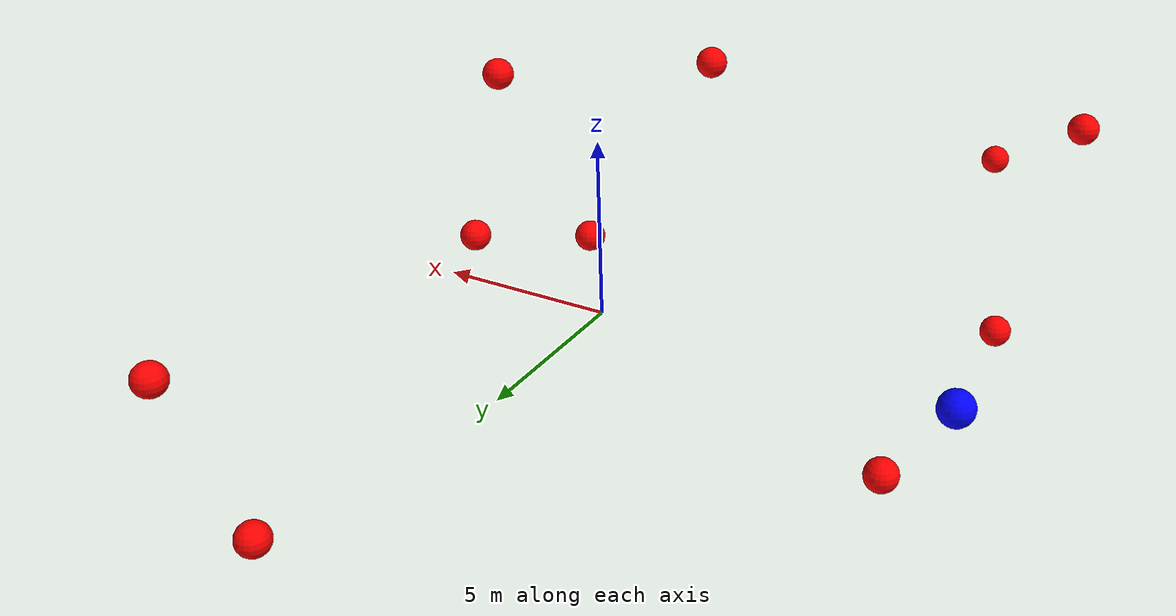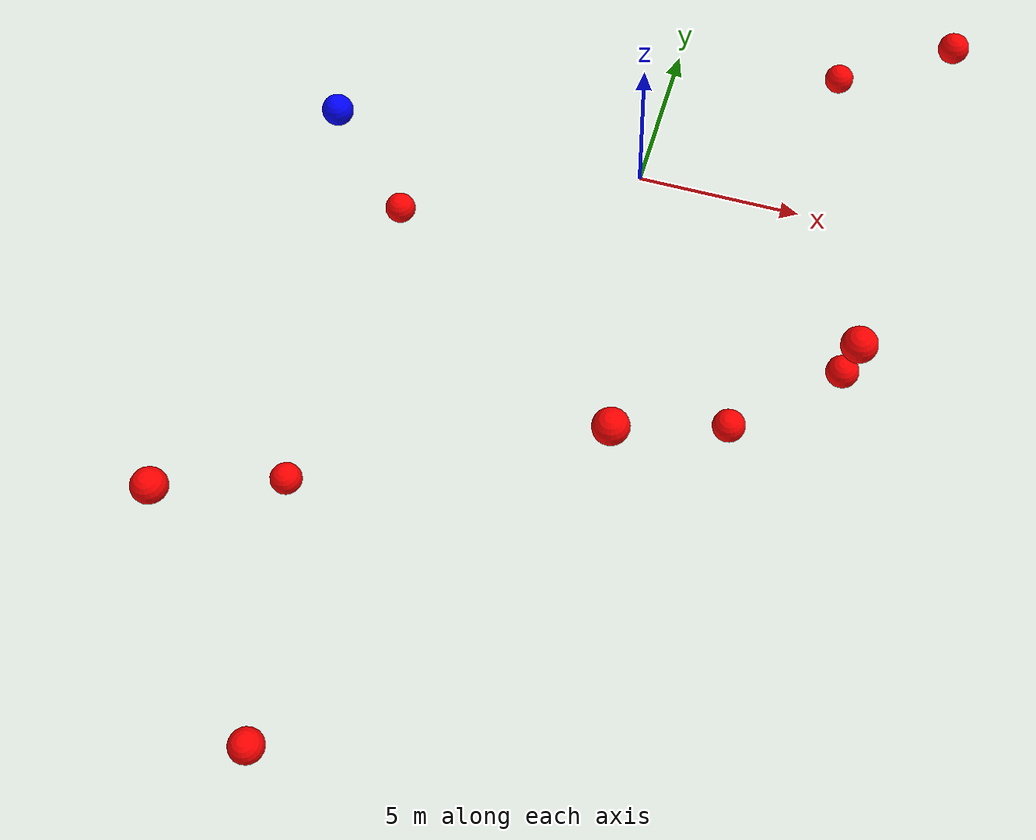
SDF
<?xml version="1.0" ?>
<sdf version="1.8">
    <world name="3d_world">
        <physics name="1ms" type="ode">
            <max_step_size>0.001</max_step_size>
            <real_time_factor>1.0</real_time_factor>
            <real_time_update_rate>1000.0</real_time_update_rate>
        </physics>
        <gravity>0 0 0</gravity>

        <plugin
            filename="gz-sim-physics-system"
            name="gz::sim::v8::systems::Physics">
        </plugin>
        <plugin
            filename="libignition-gazebo-user-commands-system.so"
            name="ignition::gazebo::systems::UserCommands">
        </plugin>
        <plugin
            filename="gz-sim-scene-broadcaster-system"
            name="gz::sim::systems::SceneBroadcaster">
        </plugin>
        <plugin
            filename="gz-sim-sensors-system"
            name="gz::sim::systems::Sensors">
            <render_engine>ogre2</render_engine>
        </plugin>

        <light type="directional" name="sun">
            <cast_shadows>true</cast_shadows>
            <pose>0 0 10 0 0 0</pose>
            <diffuse>0.8 0.8 0.8 1</diffuse>
            <specular>0.2 0.2 0.2 1</specular>
            <attenuation>
                <range>1000</range>
                <constant>0.9</constant>
                <linear>0.01</linear>
                <quadratic>0.001</quadratic>
            </attenuation>
            <direction>-0.5 0.1 -0.9</direction>
        </light>

        <!-- AGENTE -->
        <model name='agente' canonical_link='chassis'>
            <pose relative_to='world'>-10.0 0 0.0 0 0 0</pose>
            <link name='chassis'>
                <pose relative_to='__model__'>0.0 0 0.0 0 0 0</pose>
                <inertial>
                    <mass>1.14395</mass>
                    <inertia>
                        <ixx>0.095329</ixx>
                        <ixy>0</ixy>
                        <ixz>0</ixz>
                        <iyy>0.381317</iyy>
                        <iyz>0</iyz>
                        <izz>0.476646</izz>
                    </inertia>
                </inertial>
                <visual name='visual'>
                    <geometry>
                        <sphere>
                            <radius>0.5</radius>
                        </sphere>
                    </geometry>
                    <material>
                        <ambient>0.0 0.0 1.0 1</ambient>
                        <diffuse>0.0 0.0 1.0 1</diffuse>
                        <specular>0.0 0.0 1.0 1</specular>
                    </material>
                </visual>
                <collision name='collision'>
                    <geometry>
                        <sphere>
                            <radius>0.5</radius>
                        </sphere>
                    </geometry>
                </collision>
                <enable_gravity>false</enable_gravity>
            </link>

            <link name='lidar_link'>
                <pose relative_to='chassis'>0.0 0 0.1 0 0 0</pose>
                <inertial>
                    <mass>0.1</mass>
                    <inertia>
                        <ixx>0.000166667</ixx>
                        <iyy>0.000166667</iyy>
                        <izz>0.000166667</izz>
                    </inertia>
                </inertial>
                <collision name='collision'>
                    <geometry>
                        <cylinder>
                            <radius>0.05</radius>
                            <length>0.1</length>
                        </cylinder>
                    </geometry>
                </collision>
                <visual name='visual'>
                    <geometry>
                        <cylinder>
                            <radius>0.05</radius>
                            <length>0.1</length>
                        </cylinder>
                    </geometry>
                    <material>
                        <ambient>0.0 1.0 0.0 1</ambient>
                        <diffuse>0.0 1.0 0.0 1</diffuse>
                        <specular>0.0 1.0 0.0 1</specular>
                    </material>
                </visual>
                <sensor name="lidar" type="gpu_lidar">
                    <topic>scan</topic>
                    <update_rate>10</update_rate>
                    <lidar>
                        <scan>
                            <horizontal>
                                <samples>5000</samples>
                                <resolution>1</resolution>
                                <min_angle>-3.14159</min_angle>
                                <max_angle>3.14159</max_angle>
                            </horizontal>
                        </scan>
                        <range>
                            <min>0.1</min>
                            <max>10.0</max>
                            <resolution>0.01</resolution>
                        </range>
                    </lidar>
                    <visualize>true</visualize>
                    <always_on>true</always_on>
                    <update_rate>10</update_rate>
                    <pose_frame>lidar</pose_frame>
                </sensor>
                <enable_gravity>false</enable_gravity>
            </link>

            <joint name="lidar_joint" type="fixed">
                <parent>chassis</parent>
                <child>lidar_link</child>
            </joint>

            <plugin
                filename="ignition-gazebo-joint-state-publisher-system"
                name="ignition::gazebo::systems::JointStatePublisher">
            </plugin>
            <plugin
                filename="ignition-gazebo-odometry-publisher-system"
                name="ignition::gazebo::systems::OdometryPublisher">
                <dimensions>3</dimensions>
            </plugin>
            <plugin
                filename="ignition-gazebo-velocity-control-system"
                name="ignition::gazebo::systems::VelocityControl">
                <initial_linear>0.0 0 0</initial_linear>
                <initial_angular>0 0 0.0</initial_angular>
            </plugin>
            <plugin
                filename="libignition-gazebo-pose-publisher-system.so"
                name="ignition::gazebo::systems::PosePublisher">
                <topic>/agente/pose</topic>
                <frame_id>agente</frame_id>
                <update_rate>30</update_rate>
            </plugin>
        </model>

        <!-- OBSTACLE 1 -->
        <model name='obstacle_1' canonical_link='obstacle'>
            <static>false</static>
            <pose relative_to='world'>-5.50 -19.34 -1.51 0 0 0</pose>
            <link name='obstacle'>
                <pose relative_to='__model__'>0.0 0 0.0 0 0 0</pose>
                <visual name='visual'>
                    <geometry>
                        <sphere>
                            <radius>0.50</radius>
                        </sphere>
                    </geometry>
                    <material>
                        <ambient>1.0 0.0 0.0 1</ambient>
                        <diffuse>1.0 0.0 0.0 1</diffuse>
                        <specular>1.0 0.0 0.0 1</specular>
                    </material>
                </visual>
                <collision name='collision'>
                    <geometry>
                        <sphere>
                            <radius>0.50</radius>
                        </sphere>
                    </geometry>
                </collision>
                <enable_gravity>false</enable_gravity>
            </link>

            <plugin
                filename="ignition-gazebo-velocity-control-system"
                name="ignition::gazebo::systems::VelocityControl">
                <initial_linear>0.34 1.96 0.15</initial_linear>
                <initial_angular>0 0 0</initial_angular>
            </plugin>

            <plugin
                filename="ignition-gazebo-odometry-publisher-system"
                name="ignition::gazebo::systems::OdometryPublisher">
                <dimensions>3</dimensions>
            </plugin>
        </model>

        <!-- OBSTACLE 2 -->
        <model name='obstacle_2' canonical_link='obstacle'>
            <static>false</static>
            <pose relative_to='world'>-8.19 -11.03 -3.94 0 0 0</pose>
            <link name='obstacle'>
                <pose relative_to='__model__'>0.0 0 0.0 0 0 0</pose>
                <visual name='visual'>
                    <geometry>
                        <sphere>
                            <radius>0.50</radius>
                        </sphere>
                    </geometry>
                    <material>
                        <ambient>1.0 0.0 0.0 1</ambient>
                        <diffuse>1.0 0.0 0.0 1</diffuse>
                        <specular>1.0 0.0 0.0 1</specular>
                    </material>
                </visual>
                <collision name='collision'>
                    <geometry>
                        <sphere>
                            <radius>0.50</radius>
                        </sphere>
                    </geometry>
                </collision>
                <enable_gravity>false</enable_gravity>
            </link>

            <plugin
                filename="ignition-gazebo-velocity-control-system"
                name="ignition::gazebo::systems::VelocityControl">
                <initial_linear>0.73 1.75 0.63</initial_linear>
                <initial_angular>0 0 0</initial_angular>
            </plugin>

            <plugin
                filename="ignition-gazebo-odometry-publisher-system"
                name="ignition::gazebo::systems::OdometryPublisher">
                <dimensions>3</dimensions>
            </plugin>
        </model>

        <!-- OBSTACLE 3 -->
        <model name='obstacle_3' canonical_link='obstacle'>
            <static>false</static>
            <pose relative_to='world'>7.41 -4.32 -1.20 0 0 0</pose>
            <link name='obstacle'>
                <pose relative_to='__model__'>0.0 0 0.0 0 0 0</pose>
                <visual name='visual'>
                    <geometry>
                        <sphere>
                            <radius>0.50</radius>
                        </sphere>
                    </geometry>
                    <material>
                        <ambient>1.0 0.0 0.0 1</ambient>
                        <diffuse>1.0 0.0 0.0 1</diffuse>
                        <specular>1.0 0.0 0.0 1</specular>
                    </material>
                </visual>
                <collision name='collision'>
                    <geometry>
                        <sphere>
                            <radius>0.50</radius>
                        </sphere>
                    </geometry>
                </collision>
                <enable_gravity>false</enable_gravity>
            </link>

            <plugin
                filename="ignition-gazebo-velocity-control-system"
                name="ignition::gazebo::systems::VelocityControl">
                <initial_linear>-1.78 0.88 0.24</initial_linear>
                <initial_angular>0 0 0</initial_angular>
            </plugin>

            <plugin
                filename="ignition-gazebo-odometry-publisher-system"
                name="ignition::gazebo::systems::OdometryPublisher">
                <dimensions>3</dimensions>
            </plugin>
        </model>

        <!-- OBSTACLE 4 -->
        <model name='obstacle_4' canonical_link='obstacle'>
            <static>false</static>
            <pose relative_to='world'>-7.96 -0.98 -3.31 0 0 0</pose>
            <link name='obstacle'>
                <pose relative_to='__model__'>0.0 0 0.0 0 0 0</pose>
                <visual name='visual'>
                    <geometry>
                        <sphere>
                            <radius>0.50</radius>
                        </sphere>
                    </geometry>
                    <material>
                        <ambient>1.0 0.0 0.0 1</ambient>
                        <diffuse>1.0 0.0 0.0 1</diffuse>
                        <specular>1.0 0.0 0.0 1</specular>
                    </material>
                </visual>
                <collision name='collision'>
                    <geometry>
                        <sphere>
                            <radius>0.50</radius>
                        </sphere>
                    </geometry>
                </collision>
                <enable_gravity>false</enable_gravity>
            </link>

            <plugin
                filename="ignition-gazebo-velocity-control-system"
                name="ignition::gazebo::systems::VelocityControl">
                <initial_linear>1.94 0.14 0.47</initial_linear>
                <initial_angular>0 0 0</initial_angular>
            </plugin>

            <plugin
                filename="ignition-gazebo-odometry-publisher-system"
                name="ignition::gazebo::systems::OdometryPublisher">
                <dimensions>3</dimensions>
            </plugin>
        </model>

        <!-- OBSTACLE 5 -->
        <model name='obstacle_5' canonical_link='obstacle'>
            <static>false</static>
            <pose relative_to='world'>4.55 -6.77 -1.61 0 0 0</pose>
            <link name='obstacle'>
                <pose relative_to='__model__'>0.0 0 0.0 0 0 0</pose>
                <visual name='visual'>
                    <geometry>
                        <sphere>
                            <radius>0.50</radius>
                        </sphere>
                    </geometry>
                    <material>
                        <ambient>1.0 0.0 0.0 1</ambient>
                        <diffuse>1.0 0.0 0.0 1</diffuse>
                        <specular>1.0 0.0 0.0 1</specular>
                    </material>
                </visual>
                <collision name='collision'>
                    <geometry>
                        <sphere>
                            <radius>0.50</radius>
                        </sphere>
                    </geometry>
                </collision>
                <enable_gravity>false</enable_gravity>
            </link>

            <plugin
                filename="ignition-gazebo-velocity-control-system"
                name="ignition::gazebo::systems::VelocityControl">
                <initial_linear>0.32 1.02 0.24</initial_linear>
                <initial_angular>0 0 0</initial_angular>
            </plugin>

            <plugin
                filename="ignition-gazebo-odometry-publisher-system"
                name="ignition::gazebo::systems::OdometryPublisher">
                <dimensions>3</dimensions>
            </plugin>
        </model>

        <!-- OBSTACLE 6 -->
        <model name='obstacle_6' canonical_link='obstacle'>
            <static>false</static>
            <pose relative_to='world'>1.88 -10.28 3.78 0 0 0</pose>
            <link name='obstacle'>
                <pose relative_to='__model__'>0.0 0 0.0 0 0 0</pose>
                <visual name='visual'>
                    <geometry>
                        <sphere>
                            <radius>0.50</radius>
                        </sphere>
                    </geometry>
                    <material>
                        <ambient>1.0 0.0 0.0 1</ambient>
                        <diffuse>1.0 0.0 0.0 1</diffuse>
                        <specular>1.0 0.0 0.0 1</specular>
                    </material>
                </visual>
                <collision name='collision'>
                    <geometry>
                        <sphere>
                            <radius>0.50</radius>
                        </sphere>
                    </geometry>
                </collision>
                <enable_gravity>false</enable_gravity>
            </link>

            <plugin
                filename="ignition-gazebo-velocity-control-system"
                name="ignition::gazebo::systems::VelocityControl">
                <initial_linear>0.63 1.62 -0.59</initial_linear>
                <initial_angular>0 0 0</initial_angular>
            </plugin>

            <plugin
                filename="ignition-gazebo-odometry-publisher-system"
                name="ignition::gazebo::systems::OdometryPublisher">
                <dimensions>3</dimensions>
            </plugin>
        </model>

        <!-- OBSTACLE 7 -->
        <model name='obstacle_7' canonical_link='obstacle'>
            <static>false</static>
            <pose relative_to='world'>7.49 -6.21 3.71 0 0 0</pose>
            <link name='obstacle'>
                <pose relative_to='__model__'>0.0 0 0.0 0 0 0</pose>
                <visual name='visual'>
                    <geometry>
                        <sphere>
                            <radius>0.50</radius>
                        </sphere>
                    </geometry>
                    <material>
                        <ambient>1.0 0.0 0.0 1</ambient>
                        <diffuse>1.0 0.0 0.0 1</diffuse>
                        <specular>1.0 0.0 0.0 1</specular>
                    </material>
                </visual>
                <collision name='collision'>
                    <geometry>
                        <sphere>
                            <radius>0.50</radius>
                        </sphere>
                    </geometry>
                </collision>
                <enable_gravity>false</enable_gravity>
            </link>

            <plugin
                filename="ignition-gazebo-velocity-control-system"
                name="ignition::gazebo::systems::VelocityControl">
                <initial_linear>-1.18 1.31 -0.78</initial_linear>
                <initial_angular>0 0 0</initial_angular>
            </plugin>

            <plugin
                filename="ignition-gazebo-odometry-publisher-system"
                name="ignition::gazebo::systems::OdometryPublisher">
                <dimensions>3</dimensions>
            </plugin>
        </model>

        <!-- OBSTACLE 8 -->
        <model name='obstacle_8' canonical_link='obstacle'>
            <static>false</static>
            <pose relative_to='world'>-9.41 -14.38 2.13 0 0 0</pose>
            <link name='obstacle'>
                <pose relative_to='__model__'>0.0 0 0.0 0 0 0</pose>
                <visual name='visual'>
                    <geometry>
                        <sphere>
                            <radius>0.50</radius>
                        </sphere>
                    </geometry>
                    <material>
                        <ambient>1.0 0.0 0.0 1</ambient>
                        <diffuse>1.0 0.0 0.0 1</diffuse>
                        <specular>1.0 0.0 0.0 1</specular>
                    </material>
                </visual>
                <collision name='collision'>
                    <geometry>
                        <sphere>
                            <radius>0.50</radius>
                        </sphere>
                    </geometry>
                </collision>
                <enable_gravity>false</enable_gravity>
            </link>

            <plugin
                filename="ignition-gazebo-velocity-control-system"
                name="ignition::gazebo::systems::VelocityControl">
                <initial_linear>1.50 1.30 -0.19</initial_linear>
                <initial_angular>0 0 0</initial_angular>
            </plugin>

            <plugin
                filename="ignition-gazebo-odometry-publisher-system"
                name="ignition::gazebo::systems::OdometryPublisher">
                <dimensions>3</dimensions>
            </plugin>
        </model>

        <!-- OBSTACLE 9 -->
        <model name='obstacle_9' canonical_link='obstacle'>
            <static>false</static>
            <pose relative_to='world'>5.13 8.68 -3.61 0 0 0</pose>
            <link name='obstacle'>
                <pose relative_to='__model__'>0.0 0 0.0 0 0 0</pose>
                <visual name='visual'>
                    <geometry>
                        <sphere>
                            <radius>0.50</radius>
                        </sphere>
                    </geometry>
                    <material>
                        <ambient>1.0 0.0 0.0 1</ambient>
                        <diffuse>1.0 0.0 0.0 1</diffuse>
                        <specular>1.0 0.0 0.0 1</specular>
                    </material>
                </visual>
                <collision name='collision'>
                    <geometry>
                        <sphere>
                            <radius>0.50</radius>
                        </sphere>
                    </geometry>
                </collision>
                <enable_gravity>false</enable_gravity>
            </link>

            <plugin
                filename="ignition-gazebo-velocity-control-system"
                name="ignition::gazebo::systems::VelocityControl">
                <initial_linear>-0.44 -1.69 0.70</initial_linear>
                <initial_angular>0 0 0</initial_angular>
            </plugin>

            <plugin
                filename="ignition-gazebo-odometry-publisher-system"
                name="ignition::gazebo::systems::OdometryPublisher">
                <dimensions>3</dimensions>
            </plugin>
        </model>

        <!-- OBSTACLE 10 -->
        <model name='obstacle_10' canonical_link='obstacle'>
            <static>false</static>
            <pose relative_to='world'>8.59 8.08 -0.25 0 0 0</pose>
            <link name='obstacle'>
                <pose relative_to='__model__'>0.0 0 0.0 0 0 0</pose>
                <visual name='visual'>
                    <geometry>
                        <sphere>
                            <radius>0.50</radius>
                        </sphere>
                    </geometry>
                    <material>
                        <ambient>1.0 0.0 0.0 1</ambient>
                        <diffuse>1.0 0.0 0.0 1</diffuse>
                        <specular>1.0 0.0 0.0 1</specular>
                    </material>
                </visual>
                <collision name='collision'>
                    <geometry>
                        <sphere>
                            <radius>0.50</radius>
                        </sphere>
                    </geometry>
                </collision>
                <enable_gravity>false</enable_gravity>
            </link>

            <plugin
                filename="ignition-gazebo-velocity-control-system"
                name="ignition::gazebo::systems::VelocityControl">
                <initial_linear>-1.30 -1.52 0.05</initial_linear>
                <initial_angular>0 0 0</initial_angular>
            </plugin>

            <plugin
                filename="ignition-gazebo-odometry-publisher-system"
                name="ignition::gazebo::systems::OdometryPublisher">
                <dimensions>3</dimensions>
            </plugin>
        </model>

    </world>
</sdf>
